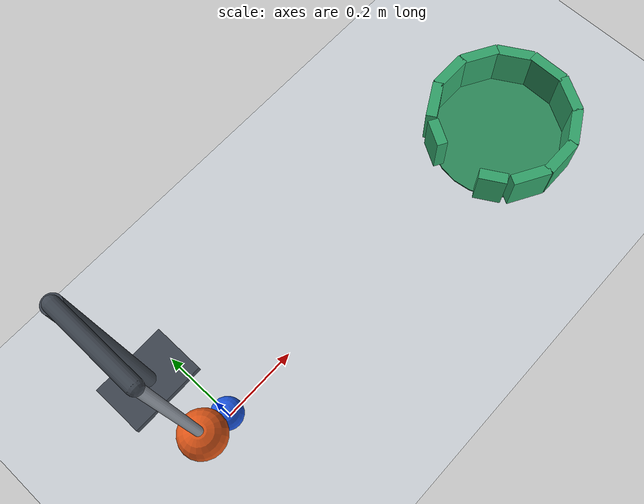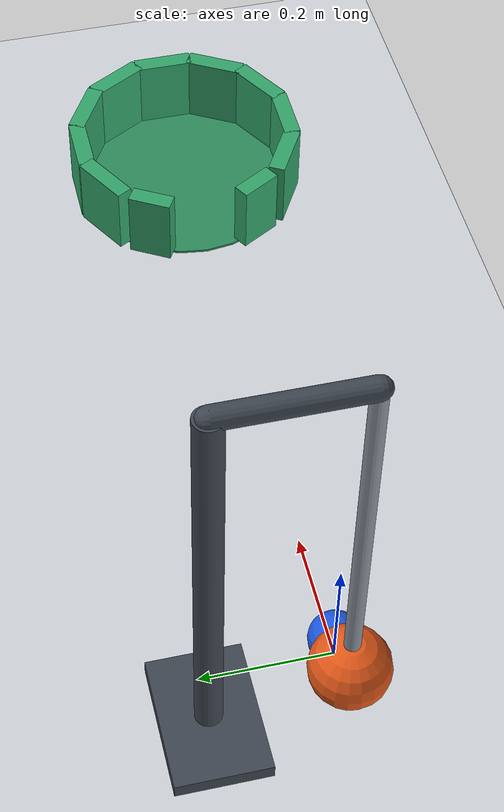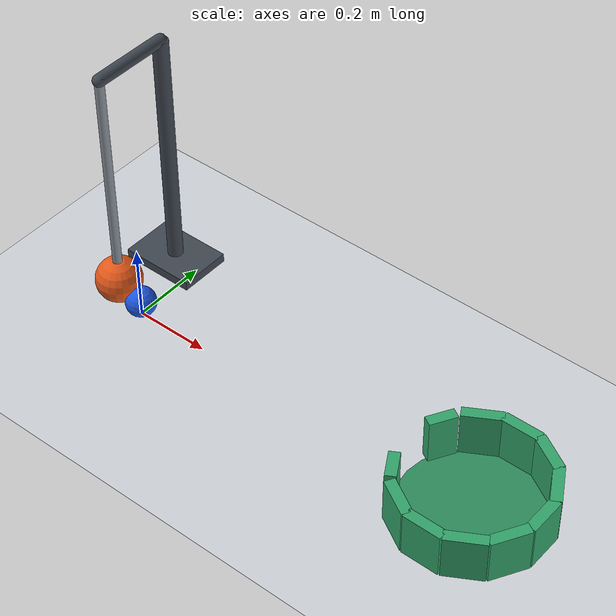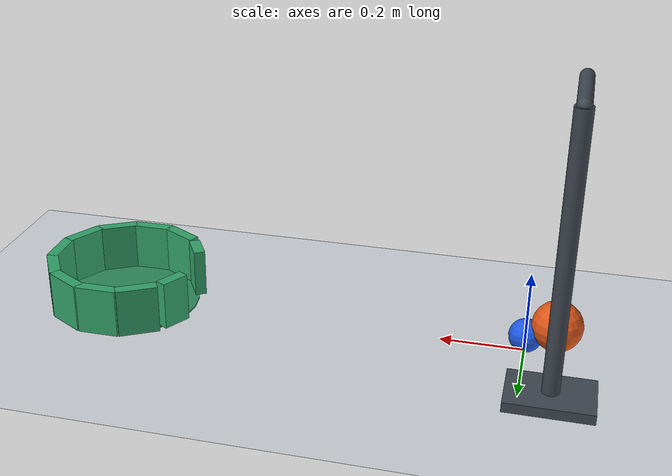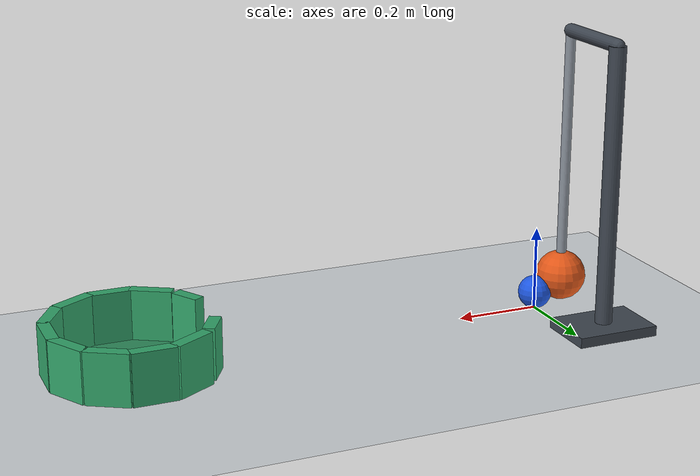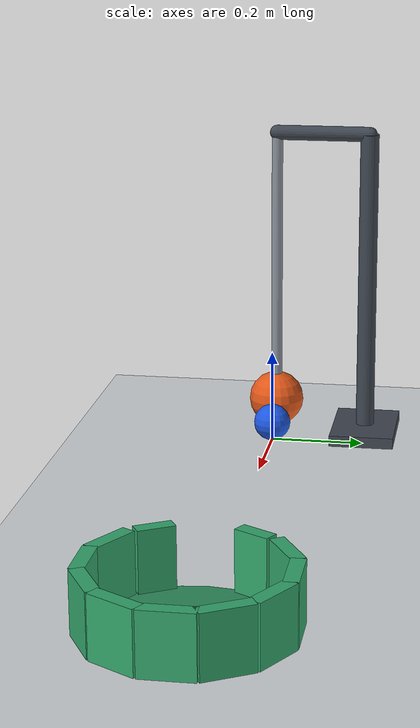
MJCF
<mujoco model="pendulum_ball_cup">
  <compiler angle="degree" inertiafromgeom="true"/>
  <option timestep="0.002" gravity="0 0 -9.81" integrator="implicitfast" cone="elliptic" iterations="100"/>
  <size njmax="1000" nconmax="200"/>

  <visual>
    <headlight ambient="0.35 0.35 0.35" diffuse="0.7 0.7 0.7" specular="0.2 0.2 0.2"/>
    <rgba haze="0.85 0.9 0.95 1"/>
  </visual>

  <worldbody>
    <light name="overhead" pos="0.5 -1 3" dir="0 0 -1" diffuse="0.8 0.8 0.8"/>
    <camera name="overview" pos="0.5 -2.8 1.9" xyaxes="1 0 0 0 0.55 0.835"/>

    <geom name="floor" type="plane" size="3 2 0.1" friction="0.3 0.005 0.0001" condim="6" solref="0.008 1" rgba="0.82 0.84 0.86 1"/>

    <!-- The support is decorative and does not participate in collisions. -->
    <body name="support" pos="-0.07 0.20 0">
      <geom name="support_post" type="cylinder" pos="0 0 0.3375" size="0.02 0.3375" contype="0" conaffinity="0" rgba="0.25 0.28 0.32 1"/>
      <geom name="support_arm" type="capsule" fromto="0 0 0.675 0 -0.20 0.675" size="0.016" contype="0" conaffinity="0" rgba="0.25 0.28 0.32 1"/>
      <geom name="support_foot" type="box" pos="0 0 0.012" size="0.10 0.07 0.012" contype="0" conaffinity="0" rgba="0.25 0.28 0.32 1"/>
    </body>

    <body name="pendulum" pos="-0.07 0 0.675">
      <joint name="pendulum_hinge" type="hinge" axis="0 1 0" limited="true" range="-60 60" damping="0.004" frictionloss="0.0005"/>
      <geom name="pendulum_rod" type="capsule" fromto="0 0 0 0 0 -0.6" size="0.012" mass="0.025" friction="0.3 0.005 0.0001" solref="0.008 1" rgba="0.55 0.58 0.62 1"/>
      <geom name="pendulum_bob" type="sphere" pos="0 0 -0.6" size="0.06" mass="0.20" friction="0.3 0.005 0.0001" solref="0.008 1" rgba="0.9 0.35 0.10 1"/>
    </body>

    <body name="ball" pos="0 0 0.04">
      <freejoint name="ball_free"/>
      <geom name="ball" type="sphere" size="0.04" mass="0.045" friction="0.3 0.005 0.0001" condim="6" solref="0.008 1" rgba="0.12 0.35 0.9 1"/>
    </body>

    <body name="cup" pos="1 0 0">
      <geom name="cup_base" type="cylinder" pos="0 0 0.002" size="0.18 0.002" friction="0.9 0.02 0.01" condim="6" solref="0.008 1" rgba="0.18 0.55 0.36 1"/>

      <geom name="cup_wall_000" type="box" pos="0.18 0 0.064" size="0.014 0.050 0.060" euler="0 0 0" friction="0.9 0.02 0.01" condim="6" solref="0.008 1" rgba="0.20 0.65 0.42 1"/>
      <geom name="cup_wall_030" type="box" pos="0.155885 0.09 0.064" size="0.014 0.050 0.060" euler="0 0 30" friction="0.9 0.02 0.01" condim="6" solref="0.008 1" rgba="0.20 0.65 0.42 1"/>
      <geom name="cup_wall_060" type="box" pos="0.09 0.155885 0.064" size="0.014 0.050 0.060" euler="0 0 60" friction="0.9 0.02 0.01" condim="6" solref="0.008 1" rgba="0.20 0.65 0.42 1"/>
      <geom name="cup_wall_090" type="box" pos="0 0.18 0.064" size="0.014 0.050 0.060" euler="0 0 90" friction="0.9 0.02 0.01" condim="6" solref="0.008 1" rgba="0.20 0.65 0.42 1"/>
      <geom name="cup_wall_120" type="box" pos="-0.09 0.155885 0.064" size="0.014 0.050 0.060" euler="0 0 120" friction="0.9 0.02 0.01" condim="6" solref="0.008 1" rgba="0.20 0.65 0.42 1"/>
      <geom name="cup_wall_150" type="box" pos="-0.155885 0.09 0.064" size="0.014 0.036 0.060" euler="0 0 150" friction="0.9 0.02 0.01" condim="6" solref="0.008 1" rgba="0.20 0.65 0.42 1"/>

      <!-- The omitted 180-degree wall forms the entrance. -->
      <geom name="cup_wall_210" type="box" pos="-0.155885 -0.09 0.064" size="0.014 0.036 0.060" euler="0 0 210" friction="0.9 0.02 0.01" condim="6" solref="0.008 1" rgba="0.20 0.65 0.42 1"/>
      <geom name="cup_wall_240" type="box" pos="-0.09 -0.155885 0.064" size="0.014 0.050 0.060" euler="0 0 240" friction="0.9 0.02 0.01" condim="6" solref="0.008 1" rgba="0.20 0.65 0.42 1"/>
      <geom name="cup_wall_270" type="box" pos="0 -0.18 0.064" size="0.014 0.050 0.060" euler="0 0 270" friction="0.9 0.02 0.01" condim="6" solref="0.008 1" rgba="0.20 0.65 0.42 1"/>
      <geom name="cup_wall_300" type="box" pos="0.09 -0.155885 0.064" size="0.014 0.050 0.060" euler="0 0 300" friction="0.9 0.02 0.01" condim="6" solref="0.008 1" rgba="0.20 0.65 0.42 1"/>
      <geom name="cup_wall_330" type="box" pos="0.155885 -0.09 0.064" size="0.014 0.050 0.060" euler="0 0 330" friction="0.9 0.02 0.01" condim="6" solref="0.008 1" rgba="0.20 0.65 0.42 1"/>
    </body>
  </worldbody>

  <keyframe>
    <key name="start" qpos="0.55 0 0 0.04 1 0 0 0" qvel="0 0 0 0 0 0 0"/>
  </keyframe>
</mujoco>
